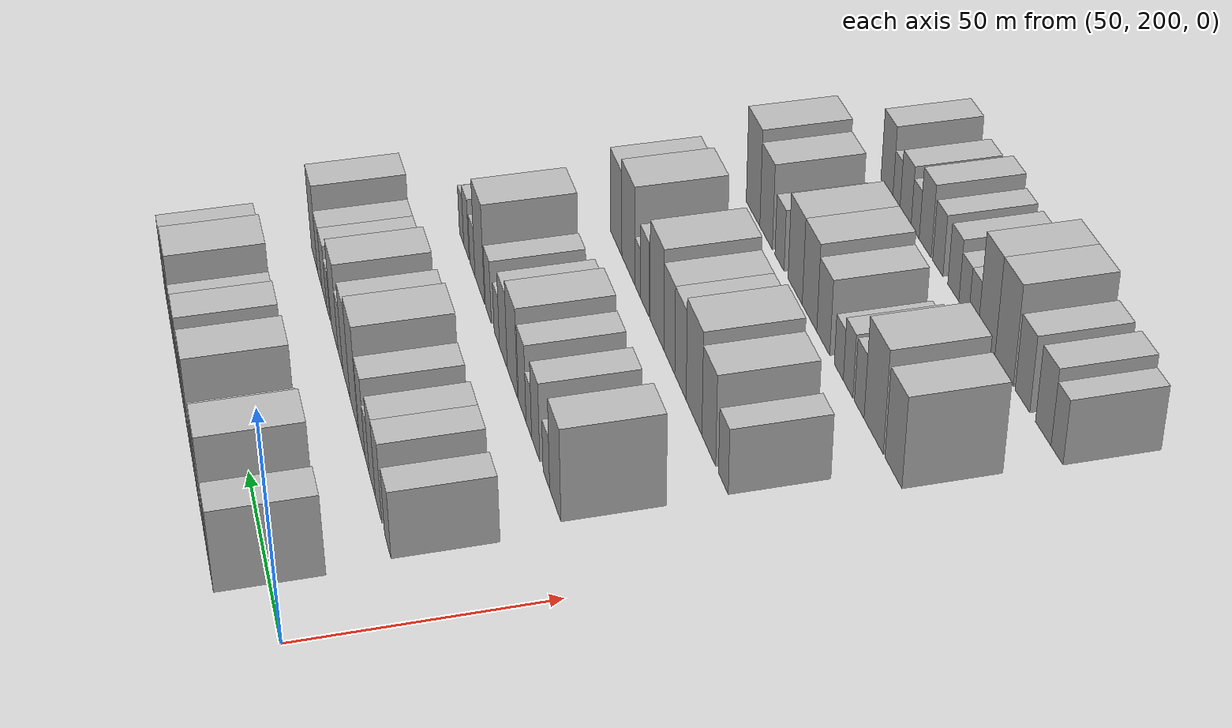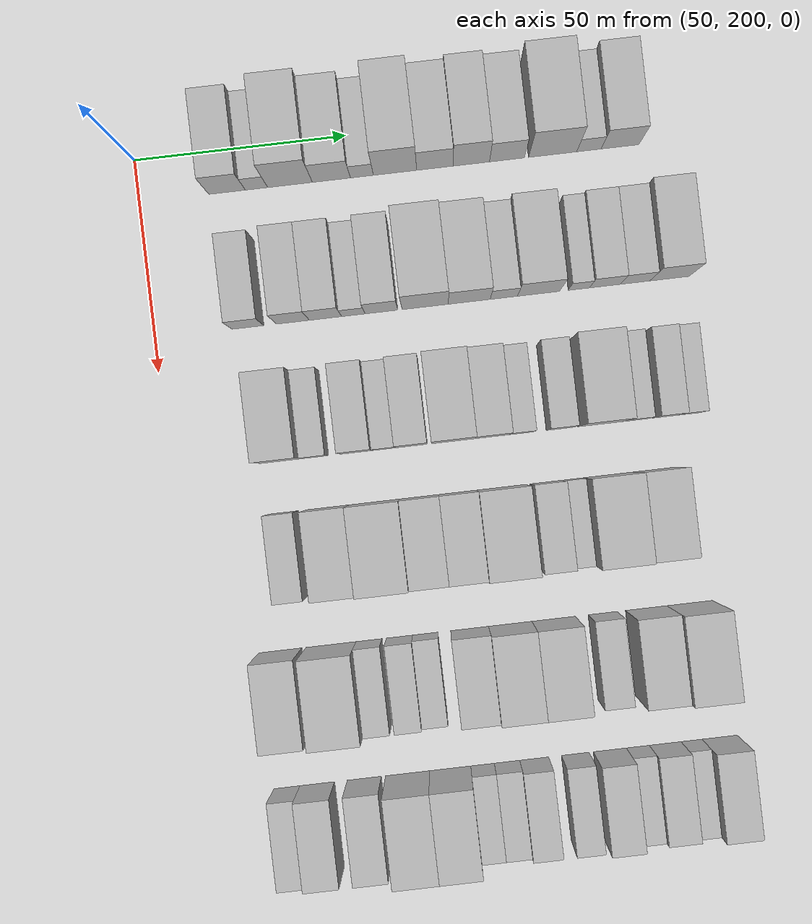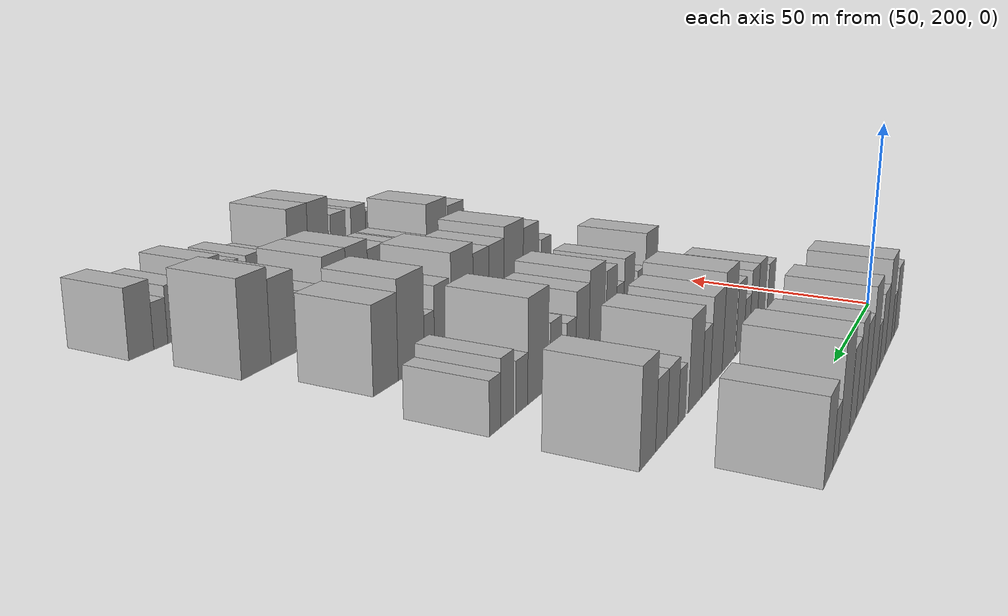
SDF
<sdf version="1.6">
 <world name="default">
  <model name="building_88">
   <static>1</static>
   <pose>50.0000 220.7906 0 0.000000 0.000000 0.000000</pose>
   <link name="link">
    <pose>0 0 9.00 0 0 0</pose>
    <collision name="collision"><geometry><box><size>20.0000 8.6236 18.0000</size></box></geometry></collision>
    <visual name="visual">
     <cast_shadows>0</cast_shadows>
     <geometry><box><size>20.0000 8.6236 18.0000</size></box></geometry>
     <material>
      <script>
       <uri>model://HANNAS_wall/materials/scripts</uri>
       <uri>model://HANNAS_wall/materials/textures</uri>
       <name>vrc/HANNAS_wall</name>
      </script>
     </material>
    </visual>
   </link>
  </model>
  <model name="building_89">
   <static>1</static>
   <pose>50.0000 227.7249 0 0.000000 0.000000 0.000000</pose>
   <link name="link">
    <pose>0 0 6.00 0 0 0</pose>
    <collision name="collision"><geometry><box><size>20.0000 5.2450 12.0000</size></box></geometry></collision>
    <visual name="visual">
     <cast_shadows>0</cast_shadows>
     <geometry><box><size>20.0000 5.2450 12.0000</size></box></geometry>
     <material>
      <script>
       <uri>model://HANNAS_wall/materials/scripts</uri>
       <uri>model://HANNAS_wall/materials/textures</uri>
       <name>vrc/HANNAS_wall</name>
      </script>
     </material>
    </visual>
   </link>
  </model>
  <model name="building_90">
   <static>1</static>
   <pose>50.0000 235.6093 0 0.000000 0.000000 0.000000</pose>
   <link name="link">
    <pose>0 0 12.00 0 0 0</pose>
    <collision name="collision"><geometry><box><size>20.0000 10.5237 24.0000</size></box></geometry></collision>
    <visual name="visual">
     <cast_shadows>0</cast_shadows>
     <geometry><box><size>20.0000 10.5237 24.0000</size></box></geometry>
     <material>
      <script>
       <uri>model://HANNAS_wall/materials/scripts</uri>
       <uri>model://HANNAS_wall/materials/textures</uri>
       <name>vrc/HANNAS_wall</name>
      </script>
     </material>
    </visual>
   </link>
  </model>
  <model name="building_91">
   <static>1</static>
   <pose>50.0000 245.3456 0 0.000000 0.000000 0.000000</pose>
   <link name="link">
    <pose>0 0 9.00 0 0 0</pose>
    <collision name="collision"><geometry><box><size>20.0000 8.9488 18.0000</size></box></geometry></collision>
    <visual name="visual">
     <cast_shadows>0</cast_shadows>
     <geometry><box><size>20.0000 8.9488 18.0000</size></box></geometry>
     <material>
      <script>
       <uri>model://HANNAS_wall/materials/scripts</uri>
       <uri>model://HANNAS_wall/materials/textures</uri>
       <name>vrc/HANNAS_wall</name>
      </script>
     </material>
    </visual>
   </link>
  </model>
  <model name="building_92">
   <static>1</static>
   <pose>50.0000 252.5295 0 0.000000 0.000000 0.000000</pose>
   <link name="link">
    <pose>0 0 6.00 0 0 0</pose>
    <collision name="collision"><geometry><box><size>20.0000 5.4190 12.0000</size></box></geometry></collision>
    <visual name="visual">
     <cast_shadows>0</cast_shadows>
     <geometry><box><size>20.0000 5.4190 12.0000</size></box></geometry>
     <material>
      <script>
       <uri>model://HANNAS_wall/materials/scripts</uri>
       <uri>model://HANNAS_wall/materials/textures</uri>
       <name>vrc/HANNAS_wall</name>
      </script>
     </material>
    </visual>
   </link>
  </model>
  <model name="building_93">
   <static>1</static>
   <pose>50.0000 260.3233 0 0.000000 0.000000 0.000000</pose>
   <link name="link">
    <pose>0 0 12.00 0 0 0</pose>
    <collision name="collision"><geometry><box><size>20.0000 10.1687 24.0000</size></box></geometry></collision>
    <visual name="visual">
     <cast_shadows>0</cast_shadows>
     <geometry><box><size>20.0000 10.1687 24.0000</size></box></geometry>
     <material>
      <script>
       <uri>model://HANNAS_wall/materials/scripts</uri>
       <uri>model://HANNAS_wall/materials/textures</uri>
       <name>vrc/HANNAS_wall</name>
      </script>
     </material>
    </visual>
   </link>
  </model>
  <model name="building_94">
   <static>1</static>
   <pose>50.0000 269.6760 0 0.000000 0.000000 0.000000</pose>
   <link name="link">
    <pose>0 0 9.00 0 0 0</pose>
    <collision name="collision"><geometry><box><size>20.0000 8.5368 18.0000</size></box></geometry></collision>
    <visual name="visual">
     <cast_shadows>0</cast_shadows>
     <geometry><box><size>20.0000 8.5368 18.0000</size></box></geometry>
     <material>
      <script>
       <uri>model://HANNAS_wall/materials/scripts</uri>
       <uri>model://HANNAS_wall/materials/textures</uri>
       <name>vrc/HANNAS_wall</name>
      </script>
     </material>
    </visual>
   </link>
  </model>
  <model name="building_95">
   <static>1</static>
   <pose>50.0000 278.2460 0 0.000000 0.000000 0.000000</pose>
   <link name="link">
    <pose>0 0 10.50 0 0 0</pose>
    <collision name="collision"><geometry><box><size>20.0000 8.6032 21.0000</size></box></geometry></collision>
    <visual name="visual">
     <cast_shadows>0</cast_shadows>
     <geometry><box><size>20.0000 8.6032 21.0000</size></box></geometry>
     <material>
      <script>
       <uri>model://HANNAS_wall/materials/scripts</uri>
       <uri>model://HANNAS_wall/materials/textures</uri>
       <name>vrc/HANNAS_wall</name>
      </script>
     </material>
    </visual>
   </link>
  </model>
  <model name="building_96">
   <static>1</static>
   <pose>50.0000 286.6525 0 0.000000 0.000000 0.000000</pose>
   <link name="link">
    <pose>0 0 9.00 0 0 0</pose>
    <collision name="collision"><geometry><box><size>20.0000 8.2097 18.0000</size></box></geometry></collision>
    <visual name="visual">
     <cast_shadows>0</cast_shadows>
     <geometry><box><size>20.0000 8.2097 18.0000</size></box></geometry>
     <material>
      <script>
       <uri>model://HANNAS_wall/materials/scripts</uri>
       <uri>model://HANNAS_wall/materials/textures</uri>
       <name>vrc/HANNAS_wall</name>
      </script>
     </material>
    </visual>
   </link>
  </model>
  <model name="building_97">
   <static>1</static>
   <pose>50.0000 297.4206 0 0.000000 0.000000 0.000000</pose>
   <link name="link">
    <pose>0 0 12.00 0 0 0</pose>
    <collision name="collision"><geometry><box><size>20.0000 11.3265 24.0000</size></box></geometry></collision>
    <visual name="visual">
     <cast_shadows>0</cast_shadows>
     <geometry><box><size>20.0000 11.3265 24.0000</size></box></geometry>
     <material>
      <script>
       <uri>model://HANNAS_wall/materials/scripts</uri>
       <uri>model://HANNAS_wall/materials/textures</uri>
       <name>vrc/HANNAS_wall</name>
      </script>
     </material>
    </visual>
   </link>
  </model>
  <model name="building_98">
   <static>1</static>
   <pose>50.0000 305.9338 0 0.000000 0.000000 0.000000</pose>
   <link name="link">
    <pose>0 0 6.00 0 0 0</pose>
    <collision name="collision"><geometry><box><size>20.0000 5.6999 12.0000</size></box></geometry></collision>
    <visual name="visual">
     <cast_shadows>0</cast_shadows>
     <geometry><box><size>20.0000 5.6999 12.0000</size></box></geometry>
     <material>
      <script>
       <uri>model://HANNAS_wall/materials/scripts</uri>
       <uri>model://HANNAS_wall/materials/textures</uri>
       <name>vrc/HANNAS_wall</name>
      </script>
     </material>
    </visual>
   </link>
  </model>
  <model name="building_99">
   <static>1</static>
   <pose>50.0000 313.2687 0 0.000000 0.000000 0.000000</pose>
   <link name="link">
    <pose>0 0 9.00 0 0 0</pose>
    <collision name="collision"><geometry><box><size>20.0000 8.9699 18.0000</size></box></geometry></collision>
    <visual name="visual">
     <cast_shadows>0</cast_shadows>
     <geometry><box><size>20.0000 8.9699 18.0000</size></box></geometry>
     <material>
      <script>
       <uri>model://HANNAS_wall/materials/scripts</uri>
       <uri>model://HANNAS_wall/materials/textures</uri>
       <name>vrc/HANNAS_wall</name>
      </script>
     </material>
    </visual>
   </link>
  </model>
  <model name="building_209">
   <static>1</static>
   <pose>82.0000 222.0134 0 0.000000 0.000000 0.000000</pose>
   <link name="link">
    <pose>0 0 7.50 0 0 0</pose>
    <collision name="collision"><geometry><box><size>20.0000 7.4620 15.0000</size></box></geometry></collision>
    <visual name="visual">
     <cast_shadows>0</cast_shadows>
     <geometry><box><size>20.0000 7.4620 15.0000</size></box></geometry>
     <material>
      <script>
       <uri>model://HANNAS_wall/materials/scripts</uri>
       <uri>model://HANNAS_wall/materials/textures</uri>
       <name>vrc/HANNAS_wall</name>
      </script>
     </material>
    </visual>
   </link>
  </model>
  <model name="building_210">
   <static>1</static>
   <pose>82.0000 232.6044 0 0.000000 0.000000 0.000000</pose>
   <link name="link">
    <pose>0 0 9.00 0 0 0</pose>
    <collision name="collision"><geometry><box><size>20.0000 7.7202 18.0000</size></box></geometry></collision>
    <visual name="visual">
     <cast_shadows>0</cast_shadows>
     <geometry><box><size>20.0000 7.7202 18.0000</size></box></geometry>
     <material>
      <script>
       <uri>model://HANNAS_wall/materials/scripts</uri>
       <uri>model://HANNAS_wall/materials/textures</uri>
       <name>vrc/HANNAS_wall</name>
      </script>
     </material>
    </visual>
   </link>
  </model>
  <model name="building_211">
   <static>1</static>
   <pose>82.0000 240.2557 0 0.000000 0.000000 0.000000</pose>
   <link name="link">
    <pose>0 0 9.00 0 0 0</pose>
    <collision name="collision"><geometry><box><size>20.0000 7.5823 18.0000</size></box></geometry></collision>
    <visual name="visual">
     <cast_shadows>0</cast_shadows>
     <geometry><box><size>20.0000 7.5823 18.0000</size></box></geometry>
     <material>
      <script>
       <uri>model://HANNAS_wall/materials/scripts</uri>
       <uri>model://HANNAS_wall/materials/textures</uri>
       <name>vrc/HANNAS_wall</name>
      </script>
     </material>
    </visual>
   </link>
  </model>
  <model name="building_212">
   <static>1</static>
   <pose>82.0000 246.8106 0 0.000000 0.000000 0.000000</pose>
   <link name="link">
    <pose>0 0 6.00 0 0 0</pose>
    <collision name="collision"><geometry><box><size>20.0000 5.5275 12.0000</size></box></geometry></collision>
    <visual name="visual">
     <cast_shadows>0</cast_shadows>
     <geometry><box><size>20.0000 5.5275 12.0000</size></box></geometry>
     <material>
      <script>
       <uri>model://HANNAS_wall/materials/scripts</uri>
       <uri>model://HANNAS_wall/materials/textures</uri>
       <name>vrc/HANNAS_wall</name>
      </script>
     </material>
    </visual>
   </link>
  </model>
  <model name="building_213">
   <static>1</static>
   <pose>82.0000 253.4266 0 0.000000 0.000000 0.000000</pose>
   <link name="link">
    <pose>0 0 9.00 0 0 0</pose>
    <collision name="collision"><geometry><box><size>20.0000 7.7044 18.0000</size></box></geometry></collision>
    <visual name="visual">
     <cast_shadows>0</cast_shadows>
     <geometry><box><size>20.0000 7.7044 18.0000</size></box></geometry>
     <material>
      <script>
       <uri>model://HANNAS_wall/materials/scripts</uri>
       <uri>model://HANNAS_wall/materials/textures</uri>
       <name>vrc/HANNAS_wall</name>
      </script>
     </material>
    </visual>
   </link>
  </model>
  <model name="building_214">
   <static>1</static>
   <pose>82.0000 263.7136 0 0.000000 0.000000 0.000000</pose>
   <link name="link">
    <pose>0 0 12.00 0 0 0</pose>
    <collision name="collision"><geometry><box><size>20.0000 10.8694 24.0000</size></box></geometry></collision>
    <visual name="visual">
     <cast_shadows>0</cast_shadows>
     <geometry><box><size>20.0000 10.8694 24.0000</size></box></geometry>
     <material>
      <script>
       <uri>model://HANNAS_wall/materials/scripts</uri>
       <uri>model://HANNAS_wall/materials/textures</uri>
       <name>vrc/HANNAS_wall</name>
      </script>
     </material>
    </visual>
   </link>
  </model>
  <model name="building_215">
   <static>1</static>
   <pose>82.0000 274.0788 0 0.000000 0.000000 0.000000</pose>
   <link name="link">
    <pose>0 0 10.50 0 0 0</pose>
    <collision name="collision"><geometry><box><size>20.0000 9.8610 21.0000</size></box></geometry></collision>
    <visual name="visual">
     <cast_shadows>0</cast_shadows>
     <geometry><box><size>20.0000 9.8610 21.0000</size></box></geometry>
     <material>
      <script>
       <uri>model://HANNAS_wall/materials/scripts</uri>
       <uri>model://HANNAS_wall/materials/textures</uri>
       <name>vrc/HANNAS_wall</name>
      </script>
     </material>
    </visual>
   </link>
  </model>
  <model name="building_216">
   <static>1</static>
   <pose>82.0000 282.2160 0 0.000000 0.000000 0.000000</pose>
   <link name="link">
    <pose>0 0 7.50 0 0 0</pose>
    <collision name="collision"><geometry><box><size>20.0000 6.4135 15.0000</size></box></geometry></collision>
    <visual name="visual">
     <cast_shadows>0</cast_shadows>
     <geometry><box><size>20.0000 6.4135 15.0000</size></box></geometry>
     <material>
      <script>
       <uri>model://HANNAS_wall/materials/scripts</uri>
       <uri>model://HANNAS_wall/materials/textures</uri>
       <name>vrc/HANNAS_wall</name>
      </script>
     </material>
    </visual>
   </link>
  </model>
  <model name="building_217">
   <static>1</static>
   <pose>82.0000 290.4052 0 0.000000 0.000000 0.000000</pose>
   <link name="link">
    <pose>0 0 10.50 0 0 0</pose>
    <collision name="collision"><geometry><box><size>20.0000 9.9647 21.0000</size></box></geometry></collision>
    <visual name="visual">
     <cast_shadows>0</cast_shadows>
     <geometry><box><size>20.0000 9.9647 21.0000</size></box></geometry>
     <material>
      <script>
       <uri>model://HANNAS_wall/materials/scripts</uri>
       <uri>model://HANNAS_wall/materials/textures</uri>
       <name>vrc/HANNAS_wall</name>
      </script>
     </material>
    </visual>
   </link>
  </model>
  <model name="building_218">
   <static>1</static>
   <pose>82.0000 299.8695 0 0.000000 0.000000 0.000000</pose>
   <link name="link">
    <pose>0 0 6.00 0 0 0</pose>
    <collision name="collision"><geometry><box><size>20.0000 4.9639 12.0000</size></box></geometry></collision>
    <visual name="visual">
     <cast_shadows>0</cast_shadows>
     <geometry><box><size>20.0000 4.9639 12.0000</size></box></geometry>
     <material>
      <script>
       <uri>model://HANNAS_wall/materials/scripts</uri>
       <uri>model://HANNAS_wall/materials/textures</uri>
       <name>vrc/HANNAS_wall</name>
      </script>
     </material>
    </visual>
   </link>
  </model>
  <model name="building_219">
   <static>1</static>
   <pose>82.0000 306.0345 0 0.000000 0.000000 0.000000</pose>
   <link name="link">
    <pose>0 0 7.50 0 0 0</pose>
    <collision name="collision"><geometry><box><size>20.0000 7.3662 15.0000</size></box></geometry></collision>
    <visual name="visual">
     <cast_shadows>0</cast_shadows>
     <geometry><box><size>20.0000 7.3662 15.0000</size></box></geometry>
     <material>
      <script>
       <uri>model://HANNAS_wall/materials/scripts</uri>
       <uri>model://HANNAS_wall/materials/textures</uri>
       <name>vrc/HANNAS_wall</name>
      </script>
     </material>
    </visual>
   </link>
  </model>
  <model name="building_220">
   <static>1</static>
   <pose>82.0000 313.1627 0 0.000000 0.000000 0.000000</pose>
   <link name="link">
    <pose>0 0 7.50 0 0 0</pose>
    <collision name="collision"><geometry><box><size>20.0000 6.8901 15.0000</size></box></geometry></collision>
    <visual name="visual">
     <cast_shadows>0</cast_shadows>
     <geometry><box><size>20.0000 6.8901 15.0000</size></box></geometry>
     <material>
      <script>
       <uri>model://HANNAS_wall/materials/scripts</uri>
       <uri>model://HANNAS_wall/materials/textures</uri>
       <name>vrc/HANNAS_wall</name>
      </script>
     </material>
    </visual>
   </link>
  </model>
  <model name="building_221">
   <static>1</static>
   <pose>82.0000 321.2400 0 0.000000 0.000000 0.000000</pose>
   <link name="link">
    <pose>0 0 10.50 0 0 0</pose>
    <collision name="collision"><geometry><box><size>20.0000 9.2645 21.0000</size></box></geometry></collision>
    <visual name="visual">
     <cast_shadows>0</cast_shadows>
     <geometry><box><size>20.0000 9.2645 21.0000</size></box></geometry>
     <material>
      <script>
       <uri>model://HANNAS_wall/materials/scripts</uri>
       <uri>model://HANNAS_wall/materials/textures</uri>
       <name>vrc/HANNAS_wall</name>
      </script>
     </material>
    </visual>
   </link>
  </model>
  <model name="building_332">
   <static>1</static>
   <pose>114.0000 226.3606 0 0.000000 0.000000 0.000000</pose>
   <link name="link">
    <pose>0 0 10.50 0 0 0</pose>
    <collision name="collision"><geometry><box><size>20.0000 9.8900 21.0000</size></box></geometry></collision>
    <visual name="visual">
     <cast_shadows>0</cast_shadows>
     <geometry><box><size>20.0000 9.8900 21.0000</size></box></geometry>
     <material>
      <script>
       <uri>model://HANNAS_wall/materials/scripts</uri>
       <uri>model://HANNAS_wall/materials/textures</uri>
       <name>vrc/HANNAS_wall</name>
      </script>
     </material>
    </visual>
   </link>
  </model>
  <model name="building_333">
   <static>1</static>
   <pose>114.0000 234.2872 0 0.000000 0.000000 0.000000</pose>
   <link name="link">
    <pose>0 0 6.00 0 0 0</pose>
    <collision name="collision"><geometry><box><size>20.0000 5.9632 12.0000</size></box></geometry></collision>
    <visual name="visual">
     <cast_shadows>0</cast_shadows>
     <geometry><box><size>20.0000 5.9632 12.0000</size></box></geometry>
     <material>
      <script>
       <uri>model://HANNAS_wall/materials/scripts</uri>
       <uri>model://HANNAS_wall/materials/textures</uri>
       <name>vrc/HANNAS_wall</name>
      </script>
     </material>
    </visual>
   </link>
  </model>
  <model name="building_334">
   <static>1</static>
   <pose>114.0000 244.0393 0 0.000000 0.000000 0.000000</pose>
   <link name="link">
    <pose>0 0 9.00 0 0 0</pose>
    <collision name="collision"><geometry><box><size>20.0000 7.5411 18.0000</size></box></geometry></collision>
    <visual name="visual">
     <cast_shadows>0</cast_shadows>
     <geometry><box><size>20.0000 7.5411 18.0000</size></box></geometry>
     <material>
      <script>
       <uri>model://HANNAS_wall/materials/scripts</uri>
       <uri>model://HANNAS_wall/materials/textures</uri>
       <name>vrc/HANNAS_wall</name>
      </script>
     </material>
    </visual>
   </link>
  </model>
  <model name="building_335">
   <static>1</static>
   <pose>114.0000 250.4711 0 0.000000 0.000000 0.000000</pose>
   <link name="link">
    <pose>0 0 6.00 0 0 0</pose>
    <collision name="collision"><geometry><box><size>20.0000 5.3223 12.0000</size></box></geometry></collision>
    <visual name="visual">
     <cast_shadows>0</cast_shadows>
     <geometry><box><size>20.0000 5.3223 12.0000</size></box></geometry>
     <material>
      <script>
       <uri>model://HANNAS_wall/materials/scripts</uri>
       <uri>model://HANNAS_wall/materials/textures</uri>
       <name>vrc/HANNAS_wall</name>
      </script>
     </material>
    </visual>
   </link>
  </model>
  <model name="building_336">
   <static>1</static>
   <pose>114.0000 256.8419 0 0.000000 0.000000 0.000000</pose>
   <link name="link">
    <pose>0 0 9.00 0 0 0</pose>
    <collision name="collision"><geometry><box><size>20.0000 7.4193 18.0000</size></box></geometry></collision>
    <visual name="visual">
     <cast_shadows>0</cast_shadows>
     <geometry><box><size>20.0000 7.4193 18.0000</size></box></geometry>
     <material>
      <script>
       <uri>model://HANNAS_wall/materials/scripts</uri>
       <uri>model://HANNAS_wall/materials/textures</uri>
       <name>vrc/HANNAS_wall</name>
      </script>
     </material>
    </visual>
   </link>
  </model>
  <model name="building_337">
   <static>1</static>
   <pose>114.0000 266.6327 0 0.000000 0.000000 0.000000</pose>
   <link name="link">
    <pose>0 0 10.50 0 0 0</pose>
    <collision name="collision"><geometry><box><size>20.0000 10.1622 21.0000</size></box></geometry></collision>
    <visual name="visual">
     <cast_shadows>0</cast_shadows>
     <geometry><box><size>20.0000 10.1622 21.0000</size></box></geometry>
     <material>
      <script>
       <uri>model://HANNAS_wall/materials/scripts</uri>
       <uri>model://HANNAS_wall/materials/textures</uri>
       <name>vrc/HANNAS_wall</name>
      </script>
     </material>
    </visual>
   </link>
  </model>
  <model name="building_338">
   <static>1</static>
   <pose>114.0000 275.7833 0 0.000000 0.000000 0.000000</pose>
   <link name="link">
    <pose>0 0 9.00 0 0 0</pose>
    <collision name="collision"><geometry><box><size>20.0000 8.1392 18.0000</size></box></geometry></collision>
    <visual name="visual">
     <cast_shadows>0</cast_shadows>
     <geometry><box><size>20.0000 8.1392 18.0000</size></box></geometry>
     <material>
      <script>
       <uri>model://HANNAS_wall/materials/scripts</uri>
       <uri>model://HANNAS_wall/materials/textures</uri>
       <name>vrc/HANNAS_wall</name>
      </script>
     </material>
    </visual>
   </link>
  </model>
  <model name="building_339">
   <static>1</static>
   <pose>114.0000 282.6802 0 0.000000 0.000000 0.000000</pose>
   <link name="link">
    <pose>0 0 6.00 0 0 0</pose>
    <collision name="collision"><geometry><box><size>20.0000 5.6546 12.0000</size></box></geometry></collision>
    <visual name="visual">
     <cast_shadows>0</cast_shadows>
     <geometry><box><size>20.0000 5.6546 12.0000</size></box></geometry>
     <material>
      <script>
       <uri>model://HANNAS_wall/materials/scripts</uri>
       <uri>model://HANNAS_wall/materials/textures</uri>
       <name>vrc/HANNAS_wall</name>
      </script>
     </material>
    </visual>
   </link>
  </model>
  <model name="building_340">
   <static>1</static>
   <pose>114.0000 291.7074 0 0.000000 0.000000 0.000000</pose>
   <link name="link">
    <pose>0 0 7.50 0 0 0</pose>
    <collision name="collision"><geometry><box><size>20.0000 6.3997 15.0000</size></box></geometry></collision>
    <visual name="visual">
     <cast_shadows>0</cast_shadows>
     <geometry><box><size>20.0000 6.3997 15.0000</size></box></geometry>
     <material>
      <script>
       <uri>model://HANNAS_wall/materials/scripts</uri>
       <uri>model://HANNAS_wall/materials/textures</uri>
       <name>vrc/HANNAS_wall</name>
      </script>
     </material>
    </visual>
   </link>
  </model>
  <model name="building_341">
   <static>1</static>
   <pose>114.0000 301.2315 0 0.000000 0.000000 0.000000</pose>
   <link name="link">
    <pose>0 0 12.00 0 0 0</pose>
    <collision name="collision"><geometry><box><size>20.0000 10.6485 24.0000</size></box></geometry></collision>
    <visual name="visual">
     <cast_shadows>0</cast_shadows>
     <geometry><box><size>20.0000 10.6485 24.0000</size></box></geometry>
     <material>
      <script>
       <uri>model://HANNAS_wall/materials/scripts</uri>
       <uri>model://HANNAS_wall/materials/textures</uri>
       <name>vrc/HANNAS_wall</name>
      </script>
     </material>
    </visual>
   </link>
  </model>
  <model name="building_342">
   <static>1</static>
   <pose>114.0000 309.4869 0 0.000000 0.000000 0.000000</pose>
   <link name="link">
    <pose>0 0 6.00 0 0 0</pose>
    <collision name="collision"><geometry><box><size>20.0000 5.8622 12.0000</size></box></geometry></collision>
    <visual name="visual">
     <cast_shadows>0</cast_shadows>
     <geometry><box><size>20.0000 5.8622 12.0000</size></box></geometry>
     <material>
      <script>
       <uri>model://HANNAS_wall/materials/scripts</uri>
       <uri>model://HANNAS_wall/materials/textures</uri>
       <name>vrc/HANNAS_wall</name>
      </script>
     </material>
    </visual>
   </link>
  </model>
  <model name="building_343">
   <static>1</static>
   <pose>114.0000 316.5089 0 0.000000 0.000000 0.000000</pose>
   <link name="link">
    <pose>0 0 7.50 0 0 0</pose>
    <collision name="collision"><geometry><box><size>20.0000 6.1817 15.0000</size></box></geometry></collision>
    <visual name="visual">
     <cast_shadows>0</cast_shadows>
     <geometry><box><size>20.0000 6.1817 15.0000</size></box></geometry>
     <material>
      <script>
       <uri>model://HANNAS_wall/materials/scripts</uri>
       <uri>model://HANNAS_wall/materials/textures</uri>
       <name>vrc/HANNAS_wall</name>
      </script>
     </material>
    </visual>
   </link>
  </model>
  <model name="building_344">
   <static>1</static>
   <pose>114.0000 322.1370 0 0.000000 0.000000 0.000000</pose>
   <link name="link">
    <pose>0 0 6.00 0 0 0</pose>
    <collision name="collision"><geometry><box><size>20.0000 5.0744 12.0000</size></box></geometry></collision>
    <visual name="visual">
     <cast_shadows>0</cast_shadows>
     <geometry><box><size>20.0000 5.0744 12.0000</size></box></geometry>
     <material>
      <script>
       <uri>model://HANNAS_wall/materials/scripts</uri>
       <uri>model://HANNAS_wall/materials/textures</uri>
       <name>vrc/HANNAS_wall</name>
      </script>
     </material>
    </visual>
   </link>
  </model>
  <model name="building_453">
   <static>1</static>
   <pose>146.0000 225.3866 0 0.000000 0.000000 0.000000</pose>
   <link name="link">
    <pose>0 0 7.50 0 0 0</pose>
    <collision name="collision"><geometry><box><size>20.0000 6.9311 15.0000</size></box></geometry></collision>
    <visual name="visual">
     <cast_shadows>0</cast_shadows>
     <geometry><box><size>20.0000 6.9311 15.0000</size></box></geometry>
     <material>
      <script>
       <uri>model://HANNAS_wall/materials/scripts</uri>
       <uri>model://HANNAS_wall/materials/textures</uri>
       <name>vrc/HANNAS_wall</name>
      </script>
     </material>
    </visual>
   </link>
  </model>
  <model name="building_454">
   <static>1</static>
   <pose>146.0000 235.9030 0 0.000000 0.000000 0.000000</pose>
   <link name="link">
    <pose>0 0 10.50 0 0 0</pose>
    <collision name="collision"><geometry><box><size>20.0000 10.1017 21.0000</size></box></geometry></collision>
    <visual name="visual">
     <cast_shadows>0</cast_shadows>
     <geometry><box><size>20.0000 10.1017 21.0000</size></box></geometry>
     <material>
      <script>
       <uri>model://HANNAS_wall/materials/scripts</uri>
       <uri>model://HANNAS_wall/materials/textures</uri>
       <name>vrc/HANNAS_wall</name>
      </script>
     </material>
    </visual>
   </link>
  </model>
  <model name="building_455">
   <static>1</static>
   <pose>146.0000 246.9231 0 0.000000 0.000000 0.000000</pose>
   <link name="link">
    <pose>0 0 12.00 0 0 0</pose>
    <collision name="collision"><geometry><box><size>20.0000 11.9385 24.0000</size></box></geometry></collision>
    <visual name="visual">
     <cast_shadows>0</cast_shadows>
     <geometry><box><size>20.0000 11.9385 24.0000</size></box></geometry>
     <material>
      <script>
       <uri>model://HANNAS_wall/materials/scripts</uri>
       <uri>model://HANNAS_wall/materials/textures</uri>
       <name>vrc/HANNAS_wall</name>
      </script>
     </material>
    </visual>
   </link>
  </model>
  <model name="building_456">
   <static>1</static>
   <pose>146.0000 257.3708 0 0.000000 0.000000 0.000000</pose>
   <link name="link">
    <pose>0 0 10.50 0 0 0</pose>
    <collision name="collision"><geometry><box><size>20.0000 8.9568 21.0000</size></box></geometry></collision>
    <visual name="visual">
     <cast_shadows>0</cast_shadows>
     <geometry><box><size>20.0000 8.9568 21.0000</size></box></geometry>
     <material>
      <script>
       <uri>model://HANNAS_wall/materials/scripts</uri>
       <uri>model://HANNAS_wall/materials/textures</uri>
       <name>vrc/HANNAS_wall</name>
      </script>
     </material>
    </visual>
   </link>
  </model>
  <model name="building_457">
   <static>1</static>
   <pose>146.0000 266.2623 0 0.000000 0.000000 0.000000</pose>
   <link name="link">
    <pose>0 0 10.50 0 0 0</pose>
    <collision name="collision"><geometry><box><size>20.0000 8.8262 21.0000</size></box></geometry></collision>
    <visual name="visual">
     <cast_shadows>0</cast_shadows>
     <geometry><box><size>20.0000 8.8262 21.0000</size></box></geometry>
     <material>
      <script>
       <uri>model://HANNAS_wall/materials/scripts</uri>
       <uri>model://HANNAS_wall/materials/textures</uri>
       <name>vrc/HANNAS_wall</name>
      </script>
     </material>
    </visual>
   </link>
  </model>
  <model name="building_458">
   <static>1</static>
   <pose>146.0000 276.4344 0 0.000000 0.000000 0.000000</pose>
   <link name="link">
    <pose>0 0 12.00 0 0 0</pose>
    <collision name="collision"><geometry><box><size>20.0000 11.5180 24.0000</size></box></geometry></collision>
    <visual name="visual">
     <cast_shadows>0</cast_shadows>
     <geometry><box><size>20.0000 11.5180 24.0000</size></box></geometry>
     <material>
      <script>
       <uri>model://HANNAS_wall/materials/scripts</uri>
       <uri>model://HANNAS_wall/materials/textures</uri>
       <name>vrc/HANNAS_wall</name>
      </script>
     </material>
    </visual>
   </link>
  </model>
  <model name="building_459">
   <static>1</static>
   <pose>146.0000 286.8419 0 0.000000 0.000000 0.000000</pose>
   <link name="link">
    <pose>0 0 9.00 0 0 0</pose>
    <collision name="collision"><geometry><box><size>20.0000 7.2970 18.0000</size></box></geometry></collision>
    <visual name="visual">
     <cast_shadows>0</cast_shadows>
     <geometry><box><size>20.0000 7.2970 18.0000</size></box></geometry>
     <material>
      <script>
       <uri>model://HANNAS_wall/materials/scripts</uri>
       <uri>model://HANNAS_wall/materials/textures</uri>
       <name>vrc/HANNAS_wall</name>
      </script>
     </material>
    </visual>
   </link>
  </model>
  <model name="building_460">
   <static>1</static>
   <pose>146.0000 292.9091 0 0.000000 0.000000 0.000000</pose>
   <link name="link">
    <pose>0 0 6.00 0 0 0</pose>
    <collision name="collision"><geometry><box><size>20.0000 4.8372 12.0000</size></box></geometry></collision>
    <visual name="visual">
     <cast_shadows>0</cast_shadows>
     <geometry><box><size>20.0000 4.8372 12.0000</size></box></geometry>
     <material>
      <script>
       <uri>model://HANNAS_wall/materials/scripts</uri>
       <uri>model://HANNAS_wall/materials/textures</uri>
       <name>vrc/HANNAS_wall</name>
      </script>
     </material>
    </visual>
   </link>
  </model>
  <model name="building_461">
   <static>1</static>
   <pose>146.0000 301.2158 0 0.000000 0.000000 0.000000</pose>
   <link name="link">
    <pose>0 0 12.00 0 0 0</pose>
    <collision name="collision"><geometry><box><size>20.0000 11.7763 24.0000</size></box></geometry></collision>
    <visual name="visual">
     <cast_shadows>0</cast_shadows>
     <geometry><box><size>20.0000 11.7763 24.0000</size></box></geometry>
     <material>
      <script>
       <uri>model://HANNAS_wall/materials/scripts</uri>
       <uri>model://HANNAS_wall/materials/textures</uri>
       <name>vrc/HANNAS_wall</name>
      </script>
     </material>
    </visual>
   </link>
  </model>
  <model name="building_462">
   <static>1</static>
   <pose>146.0000 312.3029 0 0.000000 0.000000 0.000000</pose>
   <link name="link">
    <pose>0 0 10.50 0 0 0</pose>
    <collision name="collision"><geometry><box><size>20.0000 10.3979 21.0000</size></box></geometry></collision>
    <visual name="visual">
     <cast_shadows>0</cast_shadows>
     <geometry><box><size>20.0000 10.3979 21.0000</size></box></geometry>
     <material>
      <script>
       <uri>model://HANNAS_wall/materials/scripts</uri>
       <uri>model://HANNAS_wall/materials/textures</uri>
       <name>vrc/HANNAS_wall</name>
      </script>
     </material>
    </visual>
   </link>
  </model>
  <model name="building_572">
   <static>1</static>
   <pose>178.0000 220.8787 0 0.000000 0.000000 0.000000</pose>
   <link name="link">
    <pose>0 0 10.50 0 0 0</pose>
    <collision name="collision"><geometry><box><size>20.0000 9.9898 21.0000</size></box></geometry></collision>
    <visual name="visual">
     <cast_shadows>0</cast_shadows>
     <geometry><box><size>20.0000 9.9898 21.0000</size></box></geometry>
     <material>
      <script>
       <uri>model://HANNAS_wall/materials/scripts</uri>
       <uri>model://HANNAS_wall/materials/textures</uri>
       <name>vrc/HANNAS_wall</name>
      </script>
     </material>
    </visual>
   </link>
  </model>
  <model name="building_573">
   <static>1</static>
   <pose>178.0000 232.7787 0 0.000000 0.000000 0.000000</pose>
   <link name="link">
    <pose>0 0 12.00 0 0 0</pose>
    <collision name="collision"><geometry><box><size>20.0000 11.8102 24.0000</size></box></geometry></collision>
    <visual name="visual">
     <cast_shadows>0</cast_shadows>
     <geometry><box><size>20.0000 11.8102 24.0000</size></box></geometry>
     <material>
      <script>
       <uri>model://HANNAS_wall/materials/scripts</uri>
       <uri>model://HANNAS_wall/materials/textures</uri>
       <name>vrc/HANNAS_wall</name>
      </script>
     </material>
    </visual>
   </link>
  </model>
  <model name="building_574">
   <static>1</static>
   <pose>178.0000 241.7278 0 0.000000 0.000000 0.000000</pose>
   <link name="link">
    <pose>0 0 7.50 0 0 0</pose>
    <collision name="collision"><geometry><box><size>20.0000 6.0880 15.0000</size></box></geometry></collision>
    <visual name="visual">
     <cast_shadows>0</cast_shadows>
     <geometry><box><size>20.0000 6.0880 15.0000</size></box></geometry>
     <material>
      <script>
       <uri>model://HANNAS_wall/materials/scripts</uri>
       <uri>model://HANNAS_wall/materials/textures</uri>
       <name>vrc/HANNAS_wall</name>
      </script>
     </material>
    </visual>
   </link>
  </model>
  <model name="building_575">
   <static>1</static>
   <pose>178.0000 248.8575 0 0.000000 0.000000 0.000000</pose>
   <link name="link">
    <pose>0 0 7.50 0 0 0</pose>
    <collision name="collision"><geometry><box><size>20.0000 6.1714 15.0000</size></box></geometry></collision>
    <visual name="visual">
     <cast_shadows>0</cast_shadows>
     <geometry><box><size>20.0000 6.1714 15.0000</size></box></geometry>
     <material>
      <script>
       <uri>model://HANNAS_wall/materials/scripts</uri>
       <uri>model://HANNAS_wall/materials/textures</uri>
       <name>vrc/HANNAS_wall</name>
      </script>
     </material>
    </visual>
   </link>
  </model>
  <model name="building_576">
   <static>1</static>
   <pose>178.0000 254.9254 0 0.000000 0.000000 0.000000</pose>
   <link name="link">
    <pose>0 0 6.00 0 0 0</pose>
    <collision name="collision"><geometry><box><size>20.0000 5.9644 12.0000</size></box></geometry></collision>
    <visual name="visual">
     <cast_shadows>0</cast_shadows>
     <geometry><box><size>20.0000 5.9644 12.0000</size></box></geometry>
     <material>
      <script>
       <uri>model://HANNAS_wall/materials/scripts</uri>
       <uri>model://HANNAS_wall/materials/textures</uri>
       <name>vrc/HANNAS_wall</name>
      </script>
     </material>
    </visual>
   </link>
  </model>
  <model name="building_577">
   <static>1</static>
   <pose>178.0000 265.3477 0 0.000000 0.000000 0.000000</pose>
   <link name="link">
    <pose>0 0 9.00 0 0 0</pose>
    <collision name="collision"><geometry><box><size>20.0000 8.8802 18.0000</size></box></geometry></collision>
    <visual name="visual">
     <cast_shadows>0</cast_shadows>
     <geometry><box><size>20.0000 8.8802 18.0000</size></box></geometry>
     <material>
      <script>
       <uri>model://HANNAS_wall/materials/scripts</uri>
       <uri>model://HANNAS_wall/materials/textures</uri>
       <name>vrc/HANNAS_wall</name>
      </script>
     </material>
    </visual>
   </link>
  </model>
  <model name="building_578">
   <static>1</static>
   <pose>178.0000 274.9027 0 0.000000 0.000000 0.000000</pose>
   <link name="link">
    <pose>0 0 10.50 0 0 0</pose>
    <collision name="collision"><geometry><box><size>20.0000 10.2297 21.0000</size></box></geometry></collision>
    <visual name="visual">
     <cast_shadows>0</cast_shadows>
     <geometry><box><size>20.0000 10.2297 21.0000</size></box></geometry>
     <material>
      <script>
       <uri>model://HANNAS_wall/materials/scripts</uri>
       <uri>model://HANNAS_wall/materials/textures</uri>
       <name>vrc/HANNAS_wall</name>
      </script>
     </material>
    </visual>
   </link>
  </model>
  <model name="building_579">
   <static>1</static>
   <pose>178.0000 285.1420 0 0.000000 0.000000 0.000000</pose>
   <link name="link">
    <pose>0 0 10.50 0 0 0</pose>
    <collision name="collision"><geometry><box><size>20.0000 10.2490 21.0000</size></box></geometry></collision>
    <visual name="visual">
     <cast_shadows>0</cast_shadows>
     <geometry><box><size>20.0000 10.2490 21.0000</size></box></geometry>
     <material>
      <script>
       <uri>model://HANNAS_wall/materials/scripts</uri>
       <uri>model://HANNAS_wall/materials/textures</uri>
       <name>vrc/HANNAS_wall</name>
      </script>
     </material>
    </visual>
   </link>
  </model>
  <model name="building_580">
   <static>1</static>
   <pose>178.0000 296.6698 0 0.000000 0.000000 0.000000</pose>
   <link name="link">
    <pose>0 0 7.50 0 0 0</pose>
    <collision name="collision"><geometry><box><size>20.0000 6.8066 15.0000</size></box></geometry></collision>
    <visual name="visual">
     <cast_shadows>0</cast_shadows>
     <geometry><box><size>20.0000 6.8066 15.0000</size></box></geometry>
     <material>
      <script>
       <uri>model://HANNAS_wall/materials/scripts</uri>
       <uri>model://HANNAS_wall/materials/textures</uri>
       <name>vrc/HANNAS_wall</name>
      </script>
     </material>
    </visual>
   </link>
  </model>
  <model name="building_581">
   <static>1</static>
   <pose>178.0000 306.9321 0 0.000000 0.000000 0.000000</pose>
   <link name="link">
    <pose>0 0 10.50 0 0 0</pose>
    <collision name="collision"><geometry><box><size>20.0000 9.7179 21.0000</size></box></geometry></collision>
    <visual name="visual">
     <cast_shadows>0</cast_shadows>
     <geometry><box><size>20.0000 9.7179 21.0000</size></box></geometry>
     <material>
      <script>
       <uri>model://HANNAS_wall/materials/scripts</uri>
       <uri>model://HANNAS_wall/materials/textures</uri>
       <name>vrc/HANNAS_wall</name>
      </script>
     </material>
    </visual>
   </link>
  </model>
  <model name="building_582">
   <static>1</static>
   <pose>178.0000 317.1908 0 0.000000 0.000000 0.000000</pose>
   <link name="link">
    <pose>0 0 12.00 0 0 0</pose>
    <collision name="collision"><geometry><box><size>20.0000 10.7995 24.0000</size></box></geometry></collision>
    <visual name="visual">
     <cast_shadows>0</cast_shadows>
     <geometry><box><size>20.0000 10.7995 24.0000</size></box></geometry>
     <material>
      <script>
       <uri>model://HANNAS_wall/materials/scripts</uri>
       <uri>model://HANNAS_wall/materials/textures</uri>
       <name>vrc/HANNAS_wall</name>
      </script>
     </material>
    </visual>
   </link>
  </model>
  <model name="building_694">
   <static>1</static>
   <pose>210.0000 218.6645 0 0.000000 0.000000 0.000000</pose>
   <link name="link">
    <pose>0 0 7.50 0 0 0</pose>
    <collision name="collision"><geometry><box><size>20.0000 6.1416 15.0000</size></box></geometry></collision>
    <visual name="visual">
     <cast_shadows>0</cast_shadows>
     <geometry><box><size>20.0000 6.1416 15.0000</size></box></geometry>
     <material>
      <script>
       <uri>model://HANNAS_wall/materials/scripts</uri>
       <uri>model://HANNAS_wall/materials/textures</uri>
       <name>vrc/HANNAS_wall</name>
      </script>
     </material>
    </visual>
   </link>
  </model>
  <model name="building_695">
   <static>1</static>
   <pose>210.0000 225.8110 0 0.000000 0.000000 0.000000</pose>
   <link name="link">
    <pose>0 0 9.00 0 0 0</pose>
    <collision name="collision"><geometry><box><size>20.0000 8.1512 18.0000</size></box></geometry></collision>
    <visual name="visual">
     <cast_shadows>0</cast_shadows>
     <geometry><box><size>20.0000 8.1512 18.0000</size></box></geometry>
     <material>
      <script>
       <uri>model://HANNAS_wall/materials/scripts</uri>
       <uri>model://HANNAS_wall/materials/textures</uri>
       <name>vrc/HANNAS_wall</name>
      </script>
     </material>
    </visual>
   </link>
  </model>
  <model name="building_696">
   <static>1</static>
   <pose>210.0000 236.8803 0 0.000000 0.000000 0.000000</pose>
   <link name="link">
    <pose>0 0 9.00 0 0 0</pose>
    <collision name="collision"><geometry><box><size>20.0000 7.9875 18.0000</size></box></geometry></collision>
    <visual name="visual">
     <cast_shadows>0</cast_shadows>
     <geometry><box><size>20.0000 7.9875 18.0000</size></box></geometry>
     <material>
      <script>
       <uri>model://HANNAS_wall/materials/scripts</uri>
       <uri>model://HANNAS_wall/materials/textures</uri>
       <name>vrc/HANNAS_wall</name>
      </script>
     </material>
    </visual>
   </link>
  </model>
  <model name="building_697">
   <static>1</static>
   <pose>210.0000 247.0616 0 0.000000 0.000000 0.000000</pose>
   <link name="link">
    <pose>0 0 12.00 0 0 0</pose>
    <collision name="collision"><geometry><box><size>20.0000 10.3751 24.0000</size></box></geometry></collision>
    <visual name="visual">
     <cast_shadows>0</cast_shadows>
     <geometry><box><size>20.0000 10.3751 24.0000</size></box></geometry>
     <material>
      <script>
       <uri>model://HANNAS_wall/materials/scripts</uri>
       <uri>model://HANNAS_wall/materials/textures</uri>
       <name>vrc/HANNAS_wall</name>
      </script>
     </material>
    </visual>
   </link>
  </model>
  <model name="building_698">
   <static>1</static>
   <pose>210.0000 257.0913 0 0.000000 0.000000 0.000000</pose>
   <link name="link">
    <pose>0 0 12.00 0 0 0</pose>
    <collision name="collision"><geometry><box><size>20.0000 9.6844 24.0000</size></box></geometry></collision>
    <visual name="visual">
     <cast_shadows>0</cast_shadows>
     <geometry><box><size>20.0000 9.6844 24.0000</size></box></geometry>
     <material>
      <script>
       <uri>model://HANNAS_wall/materials/scripts</uri>
       <uri>model://HANNAS_wall/materials/textures</uri>
       <name>vrc/HANNAS_wall</name>
      </script>
     </material>
    </visual>
   </link>
  </model>
  <model name="building_699">
   <static>1</static>
   <pose>210.0000 264.7039 0 0.000000 0.000000 0.000000</pose>
   <link name="link">
    <pose>0 0 6.00 0 0 0</pose>
    <collision name="collision"><geometry><box><size>20.0000 5.5407 12.0000</size></box></geometry></collision>
    <visual name="visual">
     <cast_shadows>0</cast_shadows>
     <geometry><box><size>20.0000 5.5407 12.0000</size></box></geometry>
     <material>
      <script>
       <uri>model://HANNAS_wall/materials/scripts</uri>
       <uri>model://HANNAS_wall/materials/textures</uri>
       <name>vrc/HANNAS_wall</name>
      </script>
     </material>
    </visual>
   </link>
  </model>
  <model name="building_700">
   <static>1</static>
   <pose>210.0000 270.4612 0 0.000000 0.000000 0.000000</pose>
   <link name="link">
    <pose>0 0 6.00 0 0 0</pose>
    <collision name="collision"><geometry><box><size>20.0000 5.9739 12.0000</size></box></geometry></collision>
    <visual name="visual">
     <cast_shadows>0</cast_shadows>
     <geometry><box><size>20.0000 5.9739 12.0000</size></box></geometry>
     <material>
      <script>
       <uri>model://HANNAS_wall/materials/scripts</uri>
       <uri>model://HANNAS_wall/materials/textures</uri>
       <name>vrc/HANNAS_wall</name>
      </script>
     </material>
    </visual>
   </link>
  </model>
  <model name="building_701">
   <static>1</static>
   <pose>210.0000 276.8622 0 0.000000 0.000000 0.000000</pose>
   <link name="link">
    <pose>0 0 7.50 0 0 0</pose>
    <collision name="collision"><geometry><box><size>20.0000 6.8280 15.0000</size></box></geometry></collision>
    <visual name="visual">
     <cast_shadows>0</cast_shadows>
     <geometry><box><size>20.0000 6.8280 15.0000</size></box></geometry>
     <material>
      <script>
       <uri>model://HANNAS_wall/materials/scripts</uri>
       <uri>model://HANNAS_wall/materials/textures</uri>
       <name>vrc/HANNAS_wall</name>
      </script>
     </material>
    </visual>
   </link>
  </model>
  <model name="building_702">
   <static>1</static>
   <pose>210.0000 286.5392 0 0.000000 0.000000 0.000000</pose>
   <link name="link">
    <pose>0 0 7.50 0 0 0</pose>
    <collision name="collision"><geometry><box><size>20.0000 6.5261 15.0000</size></box></geometry></collision>
    <visual name="visual">
     <cast_shadows>0</cast_shadows>
     <geometry><box><size>20.0000 6.5261 15.0000</size></box></geometry>
     <material>
      <script>
       <uri>model://HANNAS_wall/materials/scripts</uri>
       <uri>model://HANNAS_wall/materials/textures</uri>
       <name>vrc/HANNAS_wall</name>
      </script>
     </material>
    </visual>
   </link>
  </model>
  <model name="building_703">
   <static>1</static>
   <pose>210.0000 294.6844 0 0.000000 0.000000 0.000000</pose>
   <link name="link">
    <pose>0 0 9.00 0 0 0</pose>
    <collision name="collision"><geometry><box><size>20.0000 7.7643 18.0000</size></box></geometry></collision>
    <visual name="visual">
     <cast_shadows>0</cast_shadows>
     <geometry><box><size>20.0000 7.7643 18.0000</size></box></geometry>
     <material>
      <script>
       <uri>model://HANNAS_wall/materials/scripts</uri>
       <uri>model://HANNAS_wall/materials/textures</uri>
       <name>vrc/HANNAS_wall</name>
      </script>
     </material>
    </visual>
   </link>
  </model>
  <model name="building_704">
   <static>1</static>
   <pose>210.0000 301.2654 0 0.000000 0.000000 0.000000</pose>
   <link name="link">
    <pose>0 0 6.00 0 0 0</pose>
    <collision name="collision"><geometry><box><size>20.0000 5.3977 12.0000</size></box></geometry></collision>
    <visual name="visual">
     <cast_shadows>0</cast_shadows>
     <geometry><box><size>20.0000 5.3977 12.0000</size></box></geometry>
     <material>
      <script>
       <uri>model://HANNAS_wall/materials/scripts</uri>
       <uri>model://HANNAS_wall/materials/textures</uri>
       <name>vrc/HANNAS_wall</name>
      </script>
     </material>
    </visual>
   </link>
  </model>
  <model name="building_705">
   <static>1</static>
   <pose>210.0000 307.7080 0 0.000000 0.000000 0.000000</pose>
   <link name="link">
    <pose>0 0 7.50 0 0 0</pose>
    <collision name="collision"><geometry><box><size>20.0000 7.4875 15.0000</size></box></geometry></collision>
    <visual name="visual">
     <cast_shadows>0</cast_shadows>
     <geometry><box><size>20.0000 7.4875 15.0000</size></box></geometry>
     <material>
      <script>
       <uri>model://HANNAS_wall/materials/scripts</uri>
       <uri>model://HANNAS_wall/materials/textures</uri>
       <name>vrc/HANNAS_wall</name>
      </script>
     </material>
    </visual>
   </link>
  </model>
  <model name="building_706">
   <static>1</static>
   <pose>210.0000 313.9038 0 0.000000 0.000000 0.000000</pose>
   <link name="link">
    <pose>0 0 6.00 0 0 0</pose>
    <collision name="collision"><geometry><box><size>20.0000 4.9042 12.0000</size></box></geometry></collision>
    <visual name="visual">
     <cast_shadows>0</cast_shadows>
     <geometry><box><size>20.0000 4.9042 12.0000</size></box></geometry>
     <material>
      <script>
       <uri>model://HANNAS_wall/materials/scripts</uri>
       <uri>model://HANNAS_wall/materials/textures</uri>
       <name>vrc/HANNAS_wall</name>
      </script>
     </material>
    </visual>
   </link>
  </model>
  <model name="building_707">
   <static>1</static>
   <pose>210.0000 320.5085 0 0.000000 0.000000 0.000000</pose>
   <link name="link">
    <pose>0 0 9.00 0 0 0</pose>
    <collision name="collision"><geometry><box><size>20.0000 8.3053 18.0000</size></box></geometry></collision>
    <visual name="visual">
     <cast_shadows>0</cast_shadows>
     <geometry><box><size>20.0000 8.3053 18.0000</size></box></geometry>
     <material>
      <script>
       <uri>model://HANNAS_wall/materials/scripts</uri>
       <uri>model://HANNAS_wall/materials/textures</uri>
       <name>vrc/HANNAS_wall</name>
      </script>
     </material>
    </visual>
   </link>
  </model>
 </world>
</sdf>
